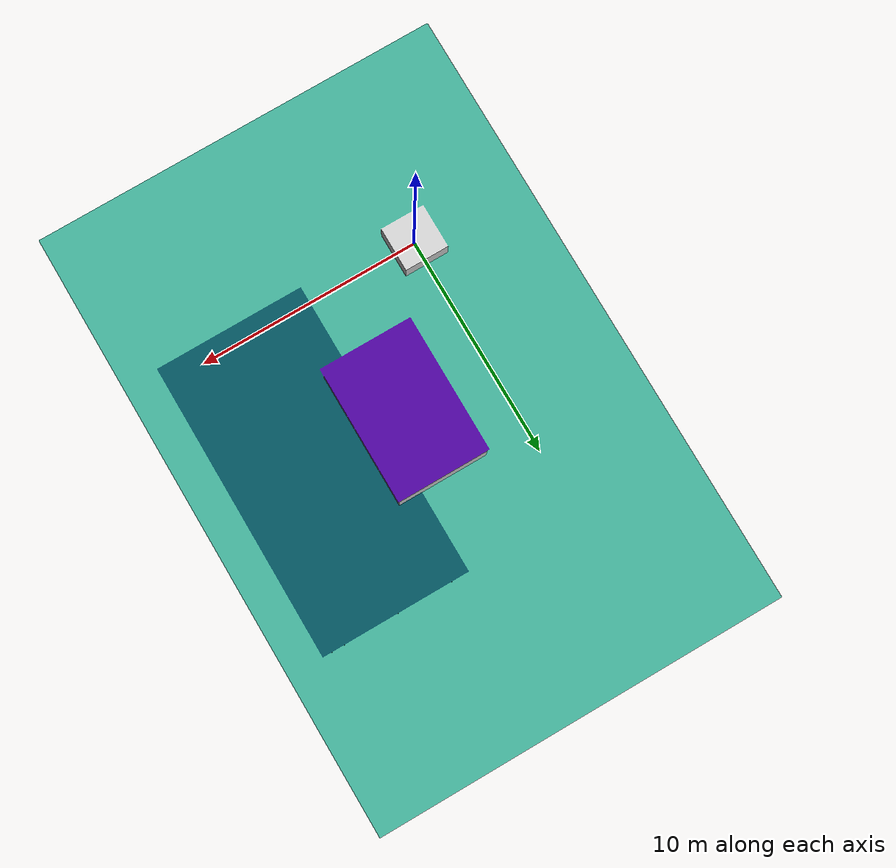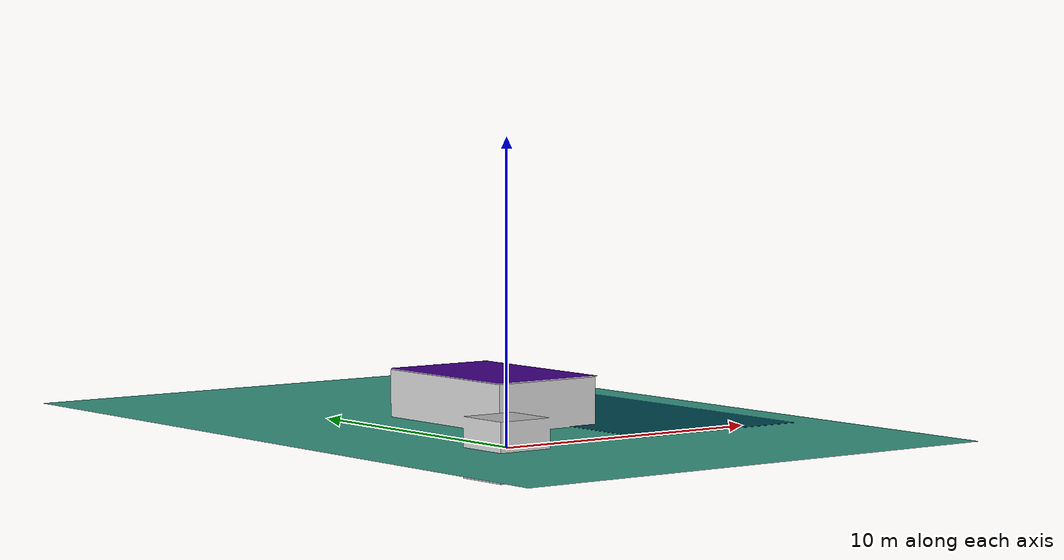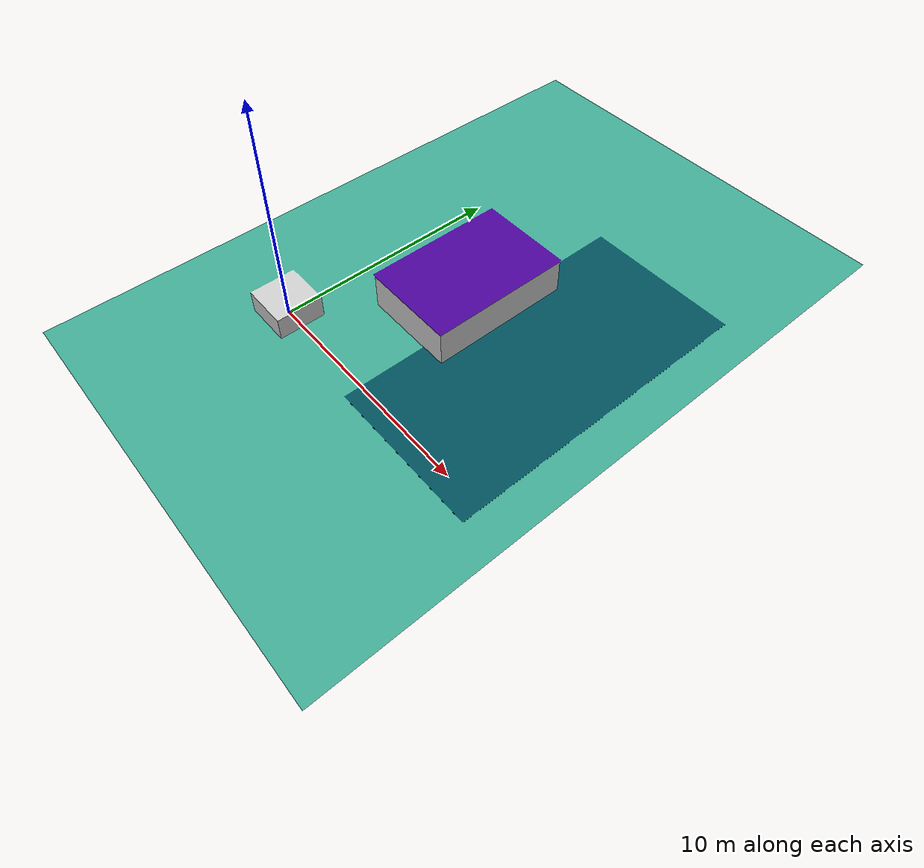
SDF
<?xml version="1.0" ?>
<sdf version="1.6">
  <model name="patiohonor">
    <static>true</static>
    <link name="emi_link">
      <visual name="visual">
        <geometry>
          <mesh>
            <uri>model://patiohonor/meshes/cancha.dae</uri>
          </mesh>
        </geometry>
      </visual>
      <collision name="collision">
        <geometry>
          <mesh>
            <uri>model://patiohonor/meshes/cancha.dae</uri>
          </mesh>
        </geometry>
      </collision>
    </link>
  </model>
</sdf>
